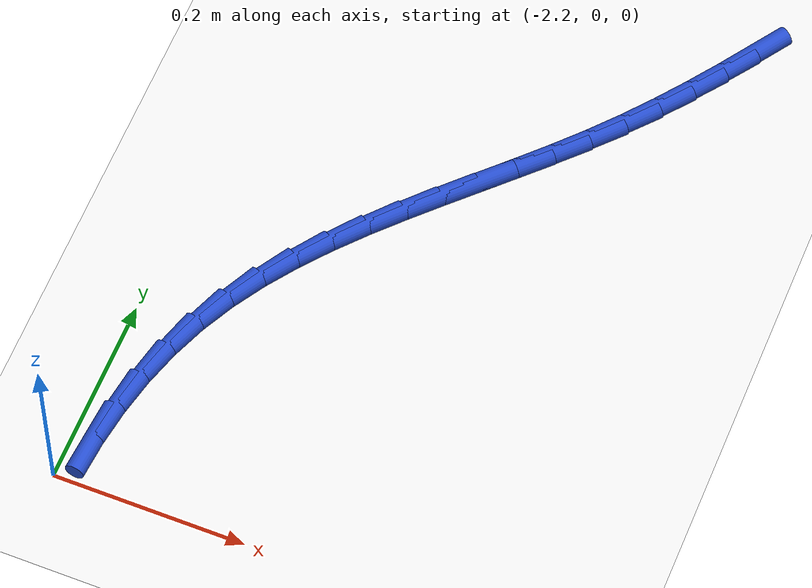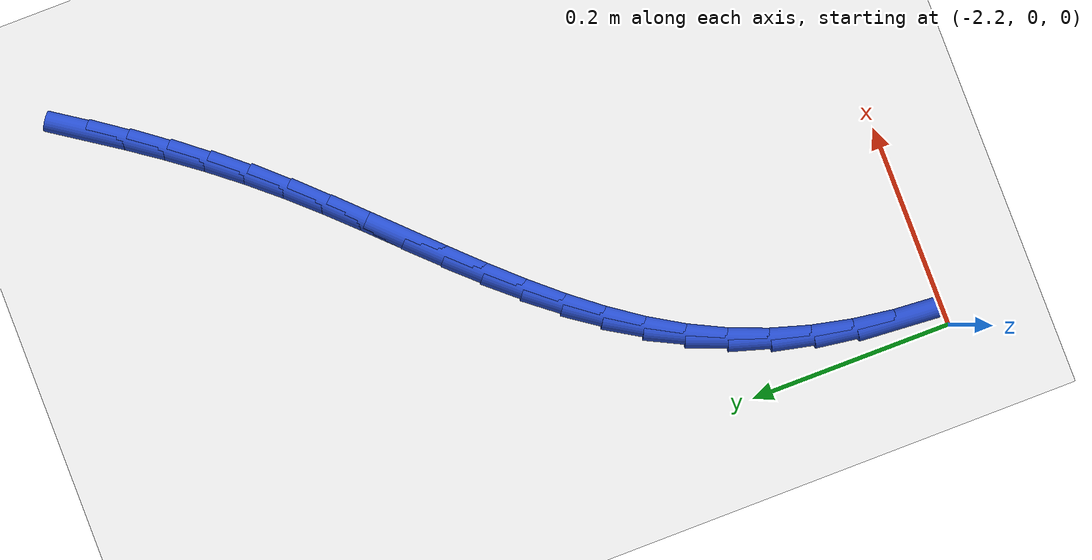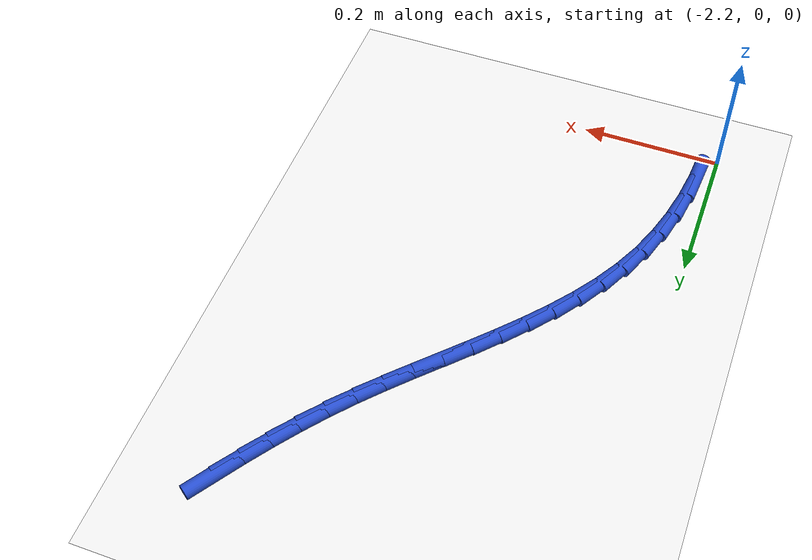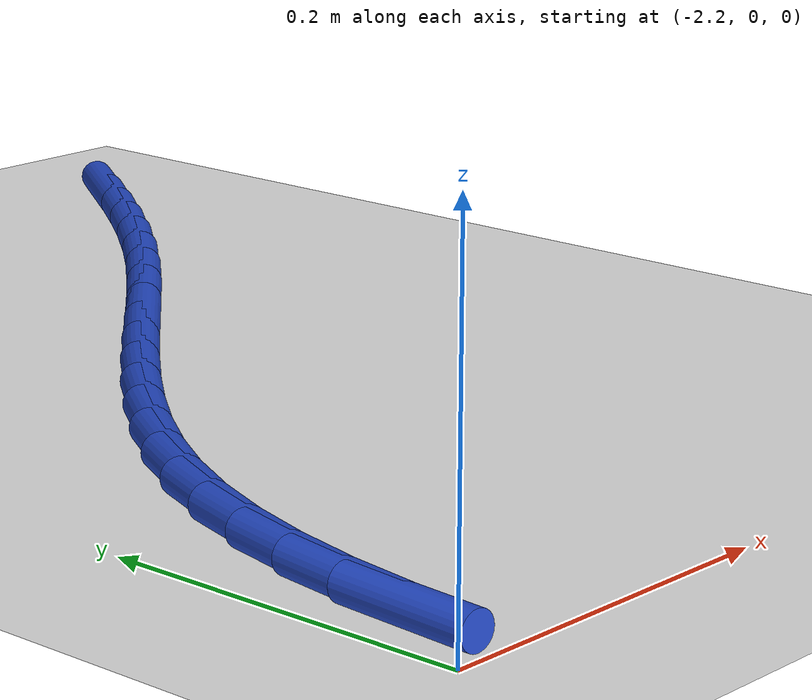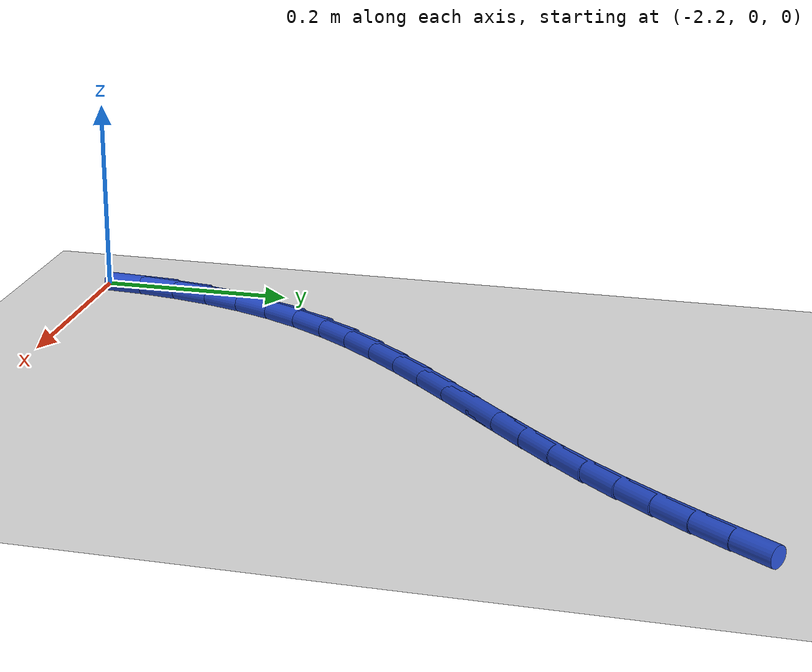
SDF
<sdf version="1.6">
 <world name="default">
  <model name="ground_plane">
   <static>1</static>
   <link name="link">
    <collision name="collision">
     <geometry><plane><normal>0 0 1</normal><size>100 100</size></plane></geometry>
     <surface><friction><ode><mu>100</mu><mu2>50</mu2></ode></friction></surface>
    </collision>
    <visual name="visual">
     <cast_shadows>0</cast_shadows>
     <geometry><plane><normal>0 0 1</normal><size>100 100</size></plane></geometry>
     <material>
      <script><uri>file://media/materials/scripts/gazebo.material</uri><name>Gazebo/WhiteGlow</name></script>
     </material>
    </visual>
   </link>
  </model>
  <model name="line">
   <link name="link_65">
    <pose>-1.7356996088439323 0.7005247867083332 0.01 0 1.57 0.9794439962837515</pose>
    <collision name="collision">
     <geometry><cylinder><radius>0.01</radius><length>0.08</length></cylinder></geometry>
    </collision>
    <visual name="visual">
     <material>
      <script><name>Gazebo/Blue</name><uri>file://media/materials/scripts/gazebo.material</uri></script>
     </material>
     <geometry><cylinder><radius>0.01</radius><length>0.08</length></cylinder></geometry>
    </visual>
   </link>
   <link name="link_66">
    <pose>-1.7578715587548208 0.6675070334065157 0.01 0 1.57 0.9549192374638674</pose>
    <collision name="collision">
     <geometry><cylinder><radius>0.01</radius><length>0.08</length></cylinder></geometry>
    </collision>
    <visual name="visual">
     <material>
      <script><name>Gazebo/Blue</name><uri>file://media/materials/scripts/gazebo.material</uri></script>
     </material>
     <geometry><cylinder><radius>0.01</radius><length>0.08</length></cylinder></geometry>
    </visual>
   </link>
   <link name="link_67">
    <pose>-1.7807307917134088 0.6352064322775527 0.01 0 1.57 0.9266928767374412</pose>
    <collision name="collision">
     <geometry><cylinder><radius>0.01</radius><length>0.08</length></cylinder></geometry>
    </collision>
    <visual name="visual">
     <material>
      <script><name>Gazebo/Blue</name><uri>file://media/materials/scripts/gazebo.material</uri></script>
     </material>
     <geometry><cylinder><radius>0.01</radius><length>0.08</length></cylinder></geometry>
    </visual>
   </link>
   <link name="link_68">
    <pose>-1.8044542476228629 0.6036148192623279 0.01 0 1.57 0.8950300388147823</pose>
    <collision name="collision">
     <geometry><cylinder><radius>0.01</radius><length>0.08</length></cylinder></geometry>
    </collision>
    <visual name="visual">
     <material>
      <script><name>Gazebo/Blue</name><uri>file://media/materials/scripts/gazebo.material</uri></script>
     </material>
     <geometry><cylinder><radius>0.01</radius><length>0.08</length></cylinder></geometry>
    </visual>
   </link>
   <link name="link_69">
    <pose>-1.8292188663863507 0.5727240303017256 0.01 0 1.57 0.8602952147108077</pose>
    <collision name="collision">
     <geometry><cylinder><radius>0.01</radius><length>0.08</length></cylinder></geometry>
    </collision>
    <visual name="visual">
     <material>
      <script><name>Gazebo/Blue</name><uri>file://media/materials/scripts/gazebo.material</uri></script>
     </material>
     <geometry><cylinder><radius>0.01</radius><length>0.08</length></cylinder></geometry>
    </visual>
   </link>
   <link name="link_70">
    <pose>-1.8552014061850548 0.5425258333587705 0.01 0 1.57 0.826344097620378</pose>
    <collision name="collision">
     <geometry><cylinder><radius>0.01</radius><length>0.08</length></cylinder></geometry>
    </collision>
    <visual name="visual">
     <material>
      <script><name>Gazebo/Blue</name><uri>file://media/materials/scripts/gazebo.material</uri></script>
     </material>
     <geometry><cylinder><radius>0.01</radius><length>0.08</length></cylinder></geometry>
    </visual>
   </link>
   <link name="link_71">
    <pose>-1.8824399244155716 0.5129601117417195 0.01 0 1.57 0.8026957829965594</pose>
    <collision name="collision">
     <geometry><cylinder><radius>0.01</radius><length>0.08</length></cylinder></geometry>
    </collision>
    <visual name="visual">
     <material>
      <script><name>Gazebo/Blue</name><uri>file://media/materials/scripts/gazebo.material</uri></script>
     </material>
     <geometry><cylinder><radius>0.01</radius><length>0.08</length></cylinder></geometry>
    </visual>
   </link>
   <link name="link_72">
    <pose>-1.9105866382448273 0.48382241513324015 0.01 0 1.57 0.7905813712806803</pose>
    <collision name="collision">
     <geometry><cylinder><radius>0.01</radius><length>0.08</length></cylinder></geometry>
    </collision>
    <visual name="visual">
     <material>
      <script><name>Gazebo/Blue</name><uri>file://media/materials/scripts/gazebo.material</uri></script>
     </material>
     <geometry><cylinder><radius>0.01</radius><length>0.08</length></cylinder></geometry>
    </visual>
   </link>
   <link name="link_73">
    <pose>-1.9392272078807766 0.45488339584538223 0.01 0 1.57 0.7897247957297865</pose>
    <collision name="collision">
     <geometry><cylinder><radius>0.01</radius><length>0.08</length></cylinder></geometry>
    </collision>
    <visual name="visual">
     <material>
      <script><name>Gazebo/Blue</name><uri>file://media/materials/scripts/gazebo.material</uri></script>
     </material>
     <geometry><cylinder><radius>0.01</radius><length>0.08</length></cylinder></geometry>
    </visual>
   </link>
   <link name="link_74">
    <pose>-1.9679472935313709 0.42591370619019475 0.01 0 1.57 0.8000538229155463</pose>
    <collision name="collision">
     <geometry><cylinder><radius>0.01</radius><length>0.08</length></cylinder></geometry>
    </collision>
    <visual name="visual">
     <material>
      <script><name>Gazebo/Blue</name><uri>file://media/materials/scripts/gazebo.material</uri></script>
     </material>
     <geometry><cylinder><radius>0.01</radius><length>0.08</length></cylinder></geometry>
    </visual>
   </link>
   <link name="link_75">
    <pose>-1.9963325554045637 0.3966839984797282 0.01 0 1.57 0.8216993380148074</pose>
    <collision name="collision">
     <geometry><cylinder><radius>0.01</radius><length>0.08</length></cylinder></geometry>
    </collision>
    <visual name="visual">
     <material>
      <script><name>Gazebo/Blue</name><uri>file://media/materials/scripts/gazebo.material</uri></script>
     </material>
     <geometry><cylinder><radius>0.01</radius><length>0.08</length></cylinder></geometry>
    </visual>
   </link>
   <link name="link_76">
    <pose>-2.023968653708307 0.36696492502603195 0.01 0 1.57 0.8549600620321234</pose>
    <collision name="collision">
     <geometry><cylinder><radius>0.01</radius><length>0.08</length></cylinder></geometry>
    </collision>
    <visual name="visual">
     <material>
      <script><name>Gazebo/Blue</name><uri>file://media/materials/scripts/gazebo.material</uri></script>
     </material>
     <geometry><cylinder><radius>0.01</radius><length>0.08</length></cylinder></geometry>
    </visual>
   </link>
   <link name="link_77">
    <pose>-2.0504412486505554 0.33652713814115554 0.01 0 1.57 0.9002253357698284</pose>
    <collision name="collision">
     <geometry><cylinder><radius>0.01</radius><length>0.08</length></cylinder></geometry>
    </collision>
    <visual name="visual">
     <material>
      <script><name>Gazebo/Blue</name><uri>file://media/materials/scripts/gazebo.material</uri></script>
     </material>
     <geometry><cylinder><radius>0.01</radius><length>0.08</length></cylinder></geometry>
    </visual>
   </link>
   <link name="link_78">
    <pose>-2.07533600043926 0.305141290137149 0.01 0 1.57 0.9578419690824351</pose>
    <collision name="collision">
     <geometry><cylinder><radius>0.01</radius><length>0.08</length></cylinder></geometry>
    </collision>
    <visual name="visual">
     <material>
      <script><name>Gazebo/Blue</name><uri>file://media/materials/scripts/gazebo.material</uri></script>
     </material>
     <geometry><cylinder><radius>0.01</radius><length>0.08</length></cylinder></geometry>
    </visual>
   </link>
   <link name="link_79">
    <pose>-2.098238569282374 0.2725780333260617 0.01 0 1.57 1.0279120825155226</pose>
    <collision name="collision">
     <geometry><cylinder><radius>0.01</radius><length>0.08</length></cylinder></geometry>
    </collision>
    <visual name="visual">
     <material>
      <script><name>Gazebo/Blue</name><uri>file://media/materials/scripts/gazebo.material</uri></script>
     </material>
     <geometry><cylinder><radius>0.01</radius><length>0.08</length></cylinder></geometry>
    </visual>
   </link>
   <link name="link_80">
    <pose>-2.118734615387851 0.23860802001994372 0.01 0 1.57 1.1099156790192148</pose>
    <collision name="collision">
     <geometry><cylinder><radius>0.01</radius><length>0.08</length></cylinder></geometry>
    </collision>
    <visual name="visual">
     <material>
      <script><name>Gazebo/Blue</name><uri>file://media/materials/scripts/gazebo.material</uri></script>
     </material>
     <geometry><cylinder><radius>0.01</radius><length>0.08</length></cylinder></geometry>
    </visual>
   </link>
   <link name="link_81">
    <pose>-2.13641304634164 0.2030052188108489 0.01 0 1.57 1.196762627514328</pose>
    <collision name="collision">
     <geometry><cylinder><radius>0.01</radius><length>0.08</length></cylinder></geometry>
    </collision>
    <visual name="visual">
     <material>
      <script><name>Gazebo/Blue</name><uri>file://media/materials/scripts/gazebo.material</uri></script>
     </material>
     <geometry><cylinder><radius>0.01</radius><length>0.08</length></cylinder></geometry>
    </visual>
   </link>
   <link name="link_82">
    <pose>-2.151044356561579 0.16572903798405703 0.01 0 1.57 1.2789674531335435</pose>
    <collision name="collision">
     <geometry><cylinder><radius>0.01</radius><length>0.08</length></cylinder></geometry>
    </collision>
    <visual name="visual">
     <material>
      <script><name>Gazebo/Blue</name><uri>file://media/materials/scripts/gazebo.material</uri></script>
     </material>
     <geometry><cylinder><radius>0.01</radius><length>0.08</length></cylinder></geometry>
    </visual>
   </link>
   <link name="link_83">
    <pose>-2.162673131535576 0.12701879248670372 0.01 0 1.57 1.3561704031591488</pose>
    <collision name="collision">
     <geometry><cylinder><radius>0.01</radius><length>0.08</length></cylinder></geometry>
    </collision>
    <visual name="visual">
     <material>
      <script><name>Gazebo/Blue</name><uri>file://media/materials/scripts/gazebo.material</uri></script>
     </material>
     <geometry><cylinder><radius>0.01</radius><length>0.08</length></cylinder></geometry>
    </visual>
   </link>
   <link name="link_84">
    <pose>-2.1713666938118177 0.08713701675512754 0.01 0 1.57 1.4289372547621497</pose>
    <collision name="collision">
     <geometry><cylinder><radius>0.01</radius><length>0.08</length></cylinder></geometry>
    </collision>
    <visual name="visual">
     <material>
      <script><name>Gazebo/Blue</name><uri>file://media/materials/scripts/gazebo.material</uri></script>
     </material>
     <geometry><cylinder><radius>0.01</radius><length>0.08</length></cylinder></geometry>
    </visual>
   </link>
   <link name="link_85">
    <pose>-2.1771923659384886 0.04634624522566851 0.01 0 1.57 1.497921108579485</pose>
    <collision name="collision">
     <geometry><cylinder><radius>0.01</radius><length>0.08</length></cylinder></geometry>
    </collision>
    <visual name="visual">
     <material>
      <script><name>Gazebo/Blue</name><uri>file://media/materials/scripts/gazebo.material</uri></script>
     </material>
     <geometry><cylinder><radius>0.01</radius><length>0.08</length></cylinder></geometry>
    </visual>
   </link>
  </model>
 </world>
</sdf>
